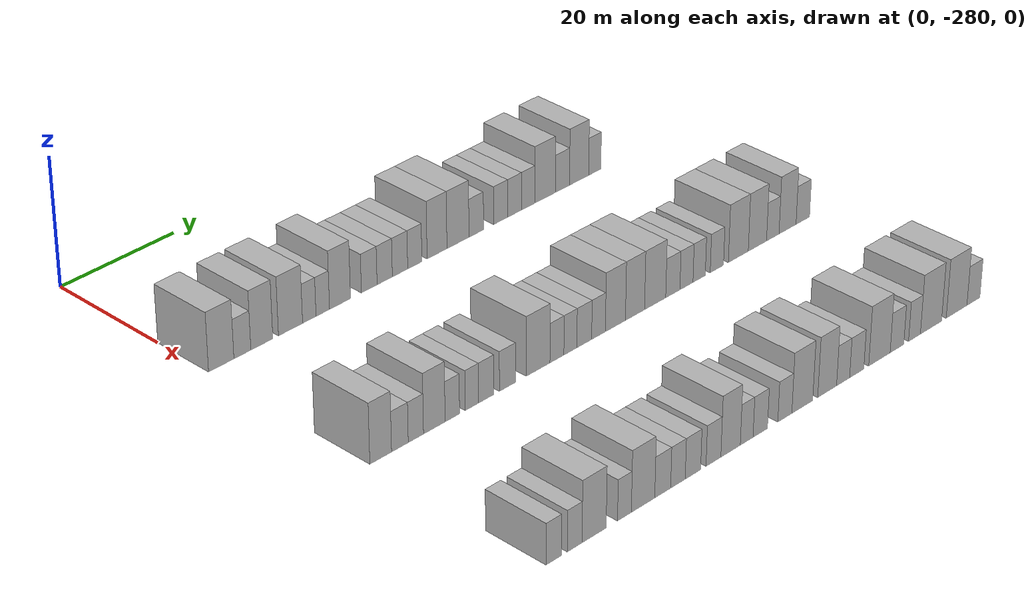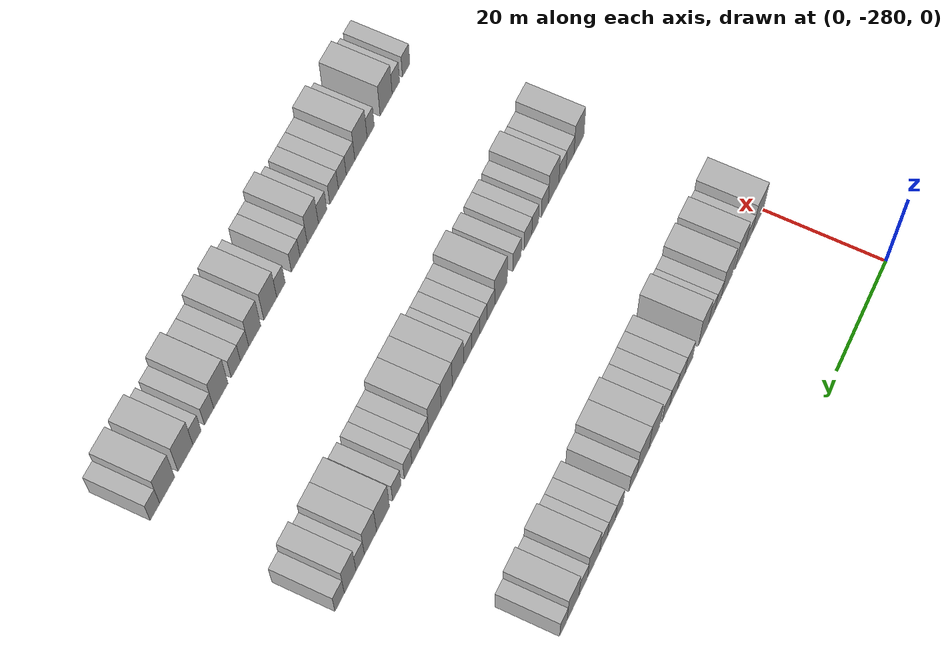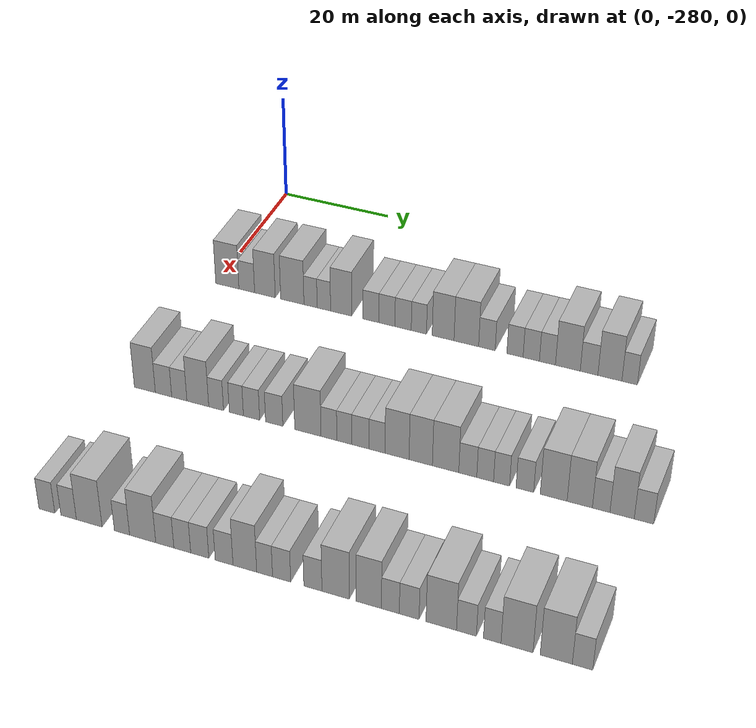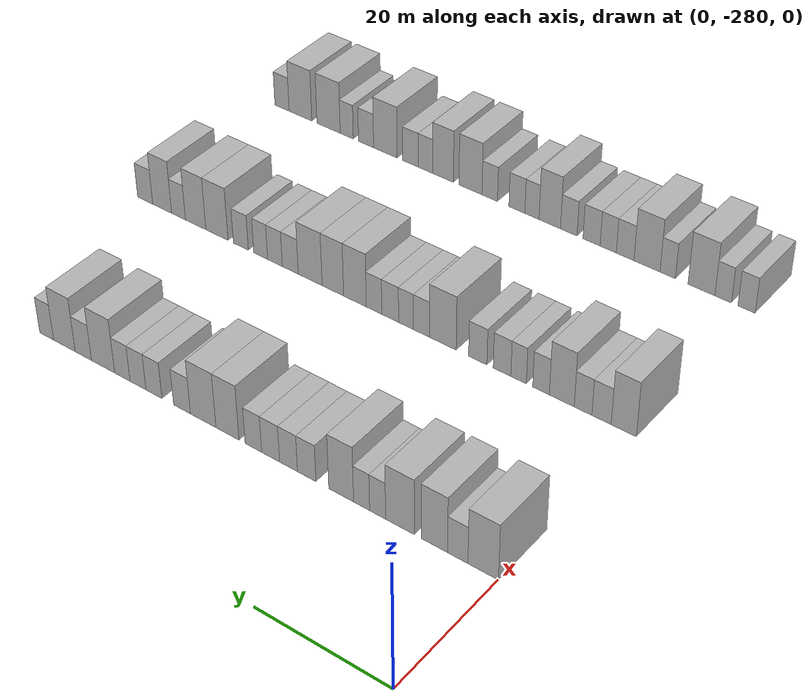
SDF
<sdf version="1.6">
 <world name="default">
  <model name="building_1">
   <static>1</static>
   <pose>25.0000 -277.8260 0 0.000000 0.000000 0.000000</pose>
   <link name="link">
    <pose>0 0 4.50 0 0 0</pose>
    <collision name="collision"><geometry><box><size>10.0000 4.3480 9.0000</size></box></geometry></collision>
    <visual name="visual">
     <cast_shadows>0</cast_shadows>
     <geometry><box><size>10.0000 4.3480 9.0000</size></box></geometry>
     <material>
      <script>
       <uri>model://HANNAS_wall/materials/scripts</uri>
       <uri>model://HANNAS_wall/materials/textures</uri>
       <name>vrc/HANNAS_wall</name>
      </script>
     </material>
    </visual>
   </link>
  </model>
  <model name="building_2">
   <static>1</static>
   <pose>25.0000 -274.1869 0 0.000000 0.000000 0.000000</pose>
   <link name="link">
    <pose>0 0 3.00 0 0 0</pose>
    <collision name="collision"><geometry><box><size>10.0000 2.9302 6.0000</size></box></geometry></collision>
    <visual name="visual">
     <cast_shadows>0</cast_shadows>
     <geometry><box><size>10.0000 2.9302 6.0000</size></box></geometry>
     <material>
      <script>
       <uri>model://HANNAS_wall/materials/scripts</uri>
       <uri>model://HANNAS_wall/materials/textures</uri>
       <name>vrc/HANNAS_wall</name>
      </script>
     </material>
    </visual>
   </link>
  </model>
  <model name="building_3">
   <static>1</static>
   <pose>25.0000 -270.8014 0 0.000000 0.000000 0.000000</pose>
   <link name="link">
    <pose>0 0 4.50 0 0 0</pose>
    <collision name="collision"><geometry><box><size>10.0000 3.8408 9.0000</size></box></geometry></collision>
    <visual name="visual">
     <cast_shadows>0</cast_shadows>
     <geometry><box><size>10.0000 3.8408 9.0000</size></box></geometry>
     <material>
      <script>
       <uri>model://HANNAS_wall/materials/scripts</uri>
       <uri>model://HANNAS_wall/materials/textures</uri>
       <name>vrc/HANNAS_wall</name>
      </script>
     </material>
    </visual>
   </link>
  </model>
  <model name="building_4">
   <static>1</static>
   <pose>25.0000 -265.7415 0 0.000000 0.000000 0.000000</pose>
   <link name="link">
    <pose>0 0 4.50 0 0 0</pose>
    <collision name="collision"><geometry><box><size>10.0000 4.2791 9.0000</size></box></geometry></collision>
    <visual name="visual">
     <cast_shadows>0</cast_shadows>
     <geometry><box><size>10.0000 4.2791 9.0000</size></box></geometry>
     <material>
      <script>
       <uri>model://HANNAS_wall/materials/scripts</uri>
       <uri>model://HANNAS_wall/materials/textures</uri>
       <name>vrc/HANNAS_wall</name>
      </script>
     </material>
    </visual>
   </link>
  </model>
  <model name="building_5">
   <static>1</static>
   <pose>25.0000 -262.3979 0 0.000000 0.000000 0.000000</pose>
   <link name="link">
    <pose>0 0 3.00 0 0 0</pose>
    <collision name="collision"><geometry><box><size>10.0000 2.4080 6.0000</size></box></geometry></collision>
    <visual name="visual">
     <cast_shadows>0</cast_shadows>
     <geometry><box><size>10.0000 2.4080 6.0000</size></box></geometry>
     <material>
      <script>
       <uri>model://HANNAS_wall/materials/scripts</uri>
       <uri>model://HANNAS_wall/materials/textures</uri>
       <name>vrc/HANNAS_wall</name>
      </script>
     </material>
    </visual>
   </link>
  </model>
  <model name="building_6">
   <static>1</static>
   <pose>25.0000 -259.9732 0 0.000000 0.000000 0.000000</pose>
   <link name="link">
    <pose>0 0 3.00 0 0 0</pose>
    <collision name="collision"><geometry><box><size>10.0000 2.4414 6.0000</size></box></geometry></collision>
    <visual name="visual">
     <cast_shadows>0</cast_shadows>
     <geometry><box><size>10.0000 2.4414 6.0000</size></box></geometry>
     <material>
      <script>
       <uri>model://HANNAS_wall/materials/scripts</uri>
       <uri>model://HANNAS_wall/materials/textures</uri>
       <name>vrc/HANNAS_wall</name>
      </script>
     </material>
    </visual>
   </link>
  </model>
  <model name="building_7">
   <static>1</static>
   <pose>25.0000 -256.8444 0 0.000000 0.000000 0.000000</pose>
   <link name="link">
    <pose>0 0 4.50 0 0 0</pose>
    <collision name="collision"><geometry><box><size>10.0000 3.8161 9.0000</size></box></geometry></collision>
    <visual name="visual">
     <cast_shadows>0</cast_shadows>
     <geometry><box><size>10.0000 3.8161 9.0000</size></box></geometry>
     <material>
      <script>
       <uri>model://HANNAS_wall/materials/scripts</uri>
       <uri>model://HANNAS_wall/materials/textures</uri>
       <name>vrc/HANNAS_wall</name>
      </script>
     </material>
    </visual>
   </link>
  </model>
  <model name="building_8">
   <static>1</static>
   <pose>25.0000 -251.4877 0 0.000000 0.000000 0.000000</pose>
   <link name="link">
    <pose>0 0 3.00 0 0 0</pose>
    <collision name="collision"><geometry><box><size>10.0000 2.8972 6.0000</size></box></geometry></collision>
    <visual name="visual">
     <cast_shadows>0</cast_shadows>
     <geometry><box><size>10.0000 2.8972 6.0000</size></box></geometry>
     <material>
      <script>
       <uri>model://HANNAS_wall/materials/scripts</uri>
       <uri>model://HANNAS_wall/materials/textures</uri>
       <name>vrc/HANNAS_wall</name>
      </script>
     </material>
    </visual>
   </link>
  </model>
  <model name="building_9">
   <static>1</static>
   <pose>25.0000 -248.6193 0 0.000000 0.000000 0.000000</pose>
   <link name="link">
    <pose>0 0 3.00 0 0 0</pose>
    <collision name="collision"><geometry><box><size>10.0000 2.8397 6.0000</size></box></geometry></collision>
    <visual name="visual">
     <cast_shadows>0</cast_shadows>
     <geometry><box><size>10.0000 2.8397 6.0000</size></box></geometry>
     <material>
      <script>
       <uri>model://HANNAS_wall/materials/scripts</uri>
       <uri>model://HANNAS_wall/materials/textures</uri>
       <name>vrc/HANNAS_wall</name>
      </script>
     </material>
    </visual>
   </link>
  </model>
  <model name="building_10">
   <static>1</static>
   <pose>25.0000 -245.7601 0 0.000000 0.000000 0.000000</pose>
   <link name="link">
    <pose>0 0 3.00 0 0 0</pose>
    <collision name="collision"><geometry><box><size>10.0000 2.8786 6.0000</size></box></geometry></collision>
    <visual name="visual">
     <cast_shadows>0</cast_shadows>
     <geometry><box><size>10.0000 2.8786 6.0000</size></box></geometry>
     <material>
      <script>
       <uri>model://HANNAS_wall/materials/scripts</uri>
       <uri>model://HANNAS_wall/materials/textures</uri>
       <name>vrc/HANNAS_wall</name>
      </script>
     </material>
    </visual>
   </link>
  </model>
  <model name="building_11">
   <static>1</static>
   <pose>25.0000 -242.9808 0 0.000000 0.000000 0.000000</pose>
   <link name="link">
    <pose>0 0 3.00 0 0 0</pose>
    <collision name="collision"><geometry><box><size>10.0000 2.6799 6.0000</size></box></geometry></collision>
    <visual name="visual">
     <cast_shadows>0</cast_shadows>
     <geometry><box><size>10.0000 2.6799 6.0000</size></box></geometry>
     <material>
      <script>
       <uri>model://HANNAS_wall/materials/scripts</uri>
       <uri>model://HANNAS_wall/materials/textures</uri>
       <name>vrc/HANNAS_wall</name>
      </script>
     </material>
    </visual>
   </link>
  </model>
  <model name="building_12">
   <static>1</static>
   <pose>25.0000 -238.7418 0 0.000000 0.000000 0.000000</pose>
   <link name="link">
    <pose>0 0 4.50 0 0 0</pose>
    <collision name="collision"><geometry><box><size>10.0000 3.7983 9.0000</size></box></geometry></collision>
    <visual name="visual">
     <cast_shadows>0</cast_shadows>
     <geometry><box><size>10.0000 3.7983 9.0000</size></box></geometry>
     <material>
      <script>
       <uri>model://HANNAS_wall/materials/scripts</uri>
       <uri>model://HANNAS_wall/materials/textures</uri>
       <name>vrc/HANNAS_wall</name>
      </script>
     </material>
    </visual>
   </link>
  </model>
  <model name="building_13">
   <static>1</static>
   <pose>25.0000 -234.7116 0 0.000000 0.000000 0.000000</pose>
   <link name="link">
    <pose>0 0 4.50 0 0 0</pose>
    <collision name="collision"><geometry><box><size>10.0000 4.2622 9.0000</size></box></geometry></collision>
    <visual name="visual">
     <cast_shadows>0</cast_shadows>
     <geometry><box><size>10.0000 4.2622 9.0000</size></box></geometry>
     <material>
      <script>
       <uri>model://HANNAS_wall/materials/scripts</uri>
       <uri>model://HANNAS_wall/materials/textures</uri>
       <name>vrc/HANNAS_wall</name>
      </script>
     </material>
    </visual>
   </link>
  </model>
  <model name="building_14">
   <static>1</static>
   <pose>25.0000 -231.1592 0 0.000000 0.000000 0.000000</pose>
   <link name="link">
    <pose>0 0 3.00 0 0 0</pose>
    <collision name="collision"><geometry><box><size>10.0000 2.8426 6.0000</size></box></geometry></collision>
    <visual name="visual">
     <cast_shadows>0</cast_shadows>
     <geometry><box><size>10.0000 2.8426 6.0000</size></box></geometry>
     <material>
      <script>
       <uri>model://HANNAS_wall/materials/scripts</uri>
       <uri>model://HANNAS_wall/materials/textures</uri>
       <name>vrc/HANNAS_wall</name>
      </script>
     </material>
    </visual>
   </link>
  </model>
  <model name="building_15">
   <static>1</static>
   <pose>25.0000 -226.3628 0 0.000000 0.000000 0.000000</pose>
   <link name="link">
    <pose>0 0 3.00 0 0 0</pose>
    <collision name="collision"><geometry><box><size>10.0000 2.7502 6.0000</size></box></geometry></collision>
    <visual name="visual">
     <cast_shadows>0</cast_shadows>
     <geometry><box><size>10.0000 2.7502 6.0000</size></box></geometry>
     <material>
      <script>
       <uri>model://HANNAS_wall/materials/scripts</uri>
       <uri>model://HANNAS_wall/materials/textures</uri>
       <name>vrc/HANNAS_wall</name>
      </script>
     </material>
    </visual>
   </link>
  </model>
  <model name="building_16">
   <static>1</static>
   <pose>25.0000 -223.6065 0 0.000000 0.000000 0.000000</pose>
   <link name="link">
    <pose>0 0 3.00 0 0 0</pose>
    <collision name="collision"><geometry><box><size>10.0000 2.7623 6.0000</size></box></geometry></collision>
    <visual name="visual">
     <cast_shadows>0</cast_shadows>
     <geometry><box><size>10.0000 2.7623 6.0000</size></box></geometry>
     <material>
      <script>
       <uri>model://HANNAS_wall/materials/scripts</uri>
       <uri>model://HANNAS_wall/materials/textures</uri>
       <name>vrc/HANNAS_wall</name>
      </script>
     </material>
    </visual>
   </link>
  </model>
  <model name="building_17">
   <static>1</static>
   <pose>25.0000 -220.8768 0 0.000000 0.000000 0.000000</pose>
   <link name="link">
    <pose>0 0 3.00 0 0 0</pose>
    <collision name="collision"><geometry><box><size>10.0000 2.6971 6.0000</size></box></geometry></collision>
    <visual name="visual">
     <cast_shadows>0</cast_shadows>
     <geometry><box><size>10.0000 2.6971 6.0000</size></box></geometry>
     <material>
      <script>
       <uri>model://HANNAS_wall/materials/scripts</uri>
       <uri>model://HANNAS_wall/materials/textures</uri>
       <name>vrc/HANNAS_wall</name>
      </script>
     </material>
    </visual>
   </link>
  </model>
  <model name="building_18">
   <static>1</static>
   <pose>25.0000 -217.4593 0 0.000000 0.000000 0.000000</pose>
   <link name="link">
    <pose>0 0 4.50 0 0 0</pose>
    <collision name="collision"><geometry><box><size>10.0000 4.1379 9.0000</size></box></geometry></collision>
    <visual name="visual">
     <cast_shadows>0</cast_shadows>
     <geometry><box><size>10.0000 4.1379 9.0000</size></box></geometry>
     <material>
      <script>
       <uri>model://HANNAS_wall/materials/scripts</uri>
       <uri>model://HANNAS_wall/materials/textures</uri>
       <name>vrc/HANNAS_wall</name>
      </script>
     </material>
    </visual>
   </link>
  </model>
  <model name="building_19">
   <static>1</static>
   <pose>25.0000 -213.9292 0 0.000000 0.000000 0.000000</pose>
   <link name="link">
    <pose>0 0 3.00 0 0 0</pose>
    <collision name="collision"><geometry><box><size>10.0000 2.9224 6.0000</size></box></geometry></collision>
    <visual name="visual">
     <cast_shadows>0</cast_shadows>
     <geometry><box><size>10.0000 2.9224 6.0000</size></box></geometry>
     <material>
      <script>
       <uri>model://HANNAS_wall/materials/scripts</uri>
       <uri>model://HANNAS_wall/materials/textures</uri>
       <name>vrc/HANNAS_wall</name>
      </script>
     </material>
    </visual>
   </link>
  </model>
  <model name="building_20">
   <static>1</static>
   <pose>25.0000 -210.4902 0 0.000000 0.000000 0.000000</pose>
   <link name="link">
    <pose>0 0 4.50 0 0 0</pose>
    <collision name="collision"><geometry><box><size>10.0000 3.9556 9.0000</size></box></geometry></collision>
    <visual name="visual">
     <cast_shadows>0</cast_shadows>
     <geometry><box><size>10.0000 3.9556 9.0000</size></box></geometry>
     <material>
      <script>
       <uri>model://HANNAS_wall/materials/scripts</uri>
       <uri>model://HANNAS_wall/materials/textures</uri>
       <name>vrc/HANNAS_wall</name>
      </script>
     </material>
    </visual>
   </link>
  </model>
  <model name="building_21">
   <static>1</static>
   <pose>25.0000 -207.2453 0 0.000000 0.000000 0.000000</pose>
   <link name="link">
    <pose>0 0 3.00 0 0 0</pose>
    <collision name="collision"><geometry><box><size>10.0000 2.5341 6.0000</size></box></geometry></collision>
    <visual name="visual">
     <cast_shadows>0</cast_shadows>
     <geometry><box><size>10.0000 2.5341 6.0000</size></box></geometry>
     <material>
      <script>
       <uri>model://HANNAS_wall/materials/scripts</uri>
       <uri>model://HANNAS_wall/materials/textures</uri>
       <name>vrc/HANNAS_wall</name>
      </script>
     </material>
    </visual>
   </link>
  </model>
  <model name="building_140">
   <static>1</static>
   <pose>55.0000 -278.1449 0 0.000000 0.000000 0.000000</pose>
   <link name="link">
    <pose>0 0 4.50 0 0 0</pose>
    <collision name="collision"><geometry><box><size>10.0000 3.7102 9.0000</size></box></geometry></collision>
    <visual name="visual">
     <cast_shadows>0</cast_shadows>
     <geometry><box><size>10.0000 3.7102 9.0000</size></box></geometry>
     <material>
      <script>
       <uri>model://HANNAS_wall/materials/scripts</uri>
       <uri>model://HANNAS_wall/materials/textures</uri>
       <name>vrc/HANNAS_wall</name>
      </script>
     </material>
    </visual>
   </link>
  </model>
  <model name="building_141">
   <static>1</static>
   <pose>55.0000 -274.8496 0 0.000000 0.000000 0.000000</pose>
   <link name="link">
    <pose>0 0 3.00 0 0 0</pose>
    <collision name="collision"><geometry><box><size>10.0000 2.8804 6.0000</size></box></geometry></collision>
    <visual name="visual">
     <cast_shadows>0</cast_shadows>
     <geometry><box><size>10.0000 2.8804 6.0000</size></box></geometry>
     <material>
      <script>
       <uri>model://HANNAS_wall/materials/scripts</uri>
       <uri>model://HANNAS_wall/materials/textures</uri>
       <name>vrc/HANNAS_wall</name>
      </script>
     </material>
    </visual>
   </link>
  </model>
  <model name="building_142">
   <static>1</static>
   <pose>55.0000 -272.0814 0 0.000000 0.000000 0.000000</pose>
   <link name="link">
    <pose>0 0 3.00 0 0 0</pose>
    <collision name="collision"><geometry><box><size>10.0000 2.6559 6.0000</size></box></geometry></collision>
    <visual name="visual">
     <cast_shadows>0</cast_shadows>
     <geometry><box><size>10.0000 2.6559 6.0000</size></box></geometry>
     <material>
      <script>
       <uri>model://HANNAS_wall/materials/scripts</uri>
       <uri>model://HANNAS_wall/materials/textures</uri>
       <name>vrc/HANNAS_wall</name>
      </script>
     </material>
    </visual>
   </link>
  </model>
  <model name="building_143">
   <static>1</static>
   <pose>55.0000 -268.8556 0 0.000000 0.000000 0.000000</pose>
   <link name="link">
    <pose>0 0 4.50 0 0 0</pose>
    <collision name="collision"><geometry><box><size>10.0000 3.7958 9.0000</size></box></geometry></collision>
    <visual name="visual">
     <cast_shadows>0</cast_shadows>
     <geometry><box><size>10.0000 3.7958 9.0000</size></box></geometry>
     <material>
      <script>
       <uri>model://HANNAS_wall/materials/scripts</uri>
       <uri>model://HANNAS_wall/materials/textures</uri>
       <name>vrc/HANNAS_wall</name>
      </script>
     </material>
    </visual>
   </link>
  </model>
  <model name="building_144">
   <static>1</static>
   <pose>55.0000 -265.6779 0 0.000000 0.000000 0.000000</pose>
   <link name="link">
    <pose>0 0 3.00 0 0 0</pose>
    <collision name="collision"><geometry><box><size>10.0000 2.5595 6.0000</size></box></geometry></collision>
    <visual name="visual">
     <cast_shadows>0</cast_shadows>
     <geometry><box><size>10.0000 2.5595 6.0000</size></box></geometry>
     <material>
      <script>
       <uri>model://HANNAS_wall/materials/scripts</uri>
       <uri>model://HANNAS_wall/materials/textures</uri>
       <name>vrc/HANNAS_wall</name>
      </script>
     </material>
    </visual>
   </link>
  </model>
  <model name="building_145">
   <static>1</static>
   <pose>55.0000 -262.1956 0 0.000000 0.000000 0.000000</pose>
   <link name="link">
    <pose>0 0 3.00 0 0 0</pose>
    <collision name="collision"><geometry><box><size>10.0000 2.4051 6.0000</size></box></geometry></collision>
    <visual name="visual">
     <cast_shadows>0</cast_shadows>
     <geometry><box><size>10.0000 2.4051 6.0000</size></box></geometry>
     <material>
      <script>
       <uri>model://HANNAS_wall/materials/scripts</uri>
       <uri>model://HANNAS_wall/materials/textures</uri>
       <name>vrc/HANNAS_wall</name>
      </script>
     </material>
    </visual>
   </link>
  </model>
  <model name="building_146">
   <static>1</static>
   <pose>55.0000 -259.6068 0 0.000000 0.000000 0.000000</pose>
   <link name="link">
    <pose>0 0 3.00 0 0 0</pose>
    <collision name="collision"><geometry><box><size>10.0000 2.7726 6.0000</size></box></geometry></collision>
    <visual name="visual">
     <cast_shadows>0</cast_shadows>
     <geometry><box><size>10.0000 2.7726 6.0000</size></box></geometry>
     <material>
      <script>
       <uri>model://HANNAS_wall/materials/scripts</uri>
       <uri>model://HANNAS_wall/materials/textures</uri>
       <name>vrc/HANNAS_wall</name>
      </script>
     </material>
    </visual>
   </link>
  </model>
  <model name="building_147">
   <static>1</static>
   <pose>55.0000 -255.7576 0 0.000000 0.000000 0.000000</pose>
   <link name="link">
    <pose>0 0 3.00 0 0 0</pose>
    <collision name="collision"><geometry><box><size>10.0000 2.9258 6.0000</size></box></geometry></collision>
    <visual name="visual">
     <cast_shadows>0</cast_shadows>
     <geometry><box><size>10.0000 2.9258 6.0000</size></box></geometry>
     <material>
      <script>
       <uri>model://HANNAS_wall/materials/scripts</uri>
       <uri>model://HANNAS_wall/materials/textures</uri>
       <name>vrc/HANNAS_wall</name>
      </script>
     </material>
    </visual>
   </link>
  </model>
  <model name="building_148">
   <static>1</static>
   <pose>55.0000 -250.1007 0 0.000000 0.000000 0.000000</pose>
   <link name="link">
    <pose>0 0 4.50 0 0 0</pose>
    <collision name="collision"><geometry><box><size>10.0000 4.3880 9.0000</size></box></geometry></collision>
    <visual name="visual">
     <cast_shadows>0</cast_shadows>
     <geometry><box><size>10.0000 4.3880 9.0000</size></box></geometry>
     <material>
      <script>
       <uri>model://HANNAS_wall/materials/scripts</uri>
       <uri>model://HANNAS_wall/materials/textures</uri>
       <name>vrc/HANNAS_wall</name>
      </script>
     </material>
    </visual>
   </link>
  </model>
  <model name="building_149">
   <static>1</static>
   <pose>55.0000 -246.5993 0 0.000000 0.000000 0.000000</pose>
   <link name="link">
    <pose>0 0 3.00 0 0 0</pose>
    <collision name="collision"><geometry><box><size>10.0000 2.6149 6.0000</size></box></geometry></collision>
    <visual name="visual">
     <cast_shadows>0</cast_shadows>
     <geometry><box><size>10.0000 2.6149 6.0000</size></box></geometry>
     <material>
      <script>
       <uri>model://HANNAS_wall/materials/scripts</uri>
       <uri>model://HANNAS_wall/materials/textures</uri>
       <name>vrc/HANNAS_wall</name>
      </script>
     </material>
    </visual>
   </link>
  </model>
  <model name="building_150">
   <static>1</static>
   <pose>55.0000 -244.0623 0 0.000000 0.000000 0.000000</pose>
   <link name="link">
    <pose>0 0 3.00 0 0 0</pose>
    <collision name="collision"><geometry><box><size>10.0000 2.4591 6.0000</size></box></geometry></collision>
    <visual name="visual">
     <cast_shadows>0</cast_shadows>
     <geometry><box><size>10.0000 2.4591 6.0000</size></box></geometry>
     <material>
      <script>
       <uri>model://HANNAS_wall/materials/scripts</uri>
       <uri>model://HANNAS_wall/materials/textures</uri>
       <name>vrc/HANNAS_wall</name>
      </script>
     </material>
    </visual>
   </link>
  </model>
  <model name="building_151">
   <static>1</static>
   <pose>55.0000 -241.4262 0 0.000000 0.000000 0.000000</pose>
   <link name="link">
    <pose>0 0 3.00 0 0 0</pose>
    <collision name="collision"><geometry><box><size>10.0000 2.8131 6.0000</size></box></geometry></collision>
    <visual name="visual">
     <cast_shadows>0</cast_shadows>
     <geometry><box><size>10.0000 2.8131 6.0000</size></box></geometry>
     <material>
      <script>
       <uri>model://HANNAS_wall/materials/scripts</uri>
       <uri>model://HANNAS_wall/materials/textures</uri>
       <name>vrc/HANNAS_wall</name>
      </script>
     </material>
    </visual>
   </link>
  </model>
  <model name="building_152">
   <static>1</static>
   <pose>55.0000 -238.7062 0 0.000000 0.000000 0.000000</pose>
   <link name="link">
    <pose>0 0 3.00 0 0 0</pose>
    <collision name="collision"><geometry><box><size>10.0000 2.6269 6.0000</size></box></geometry></collision>
    <visual name="visual">
     <cast_shadows>0</cast_shadows>
     <geometry><box><size>10.0000 2.6269 6.0000</size></box></geometry>
     <material>
      <script>
       <uri>model://HANNAS_wall/materials/scripts</uri>
       <uri>model://HANNAS_wall/materials/textures</uri>
       <name>vrc/HANNAS_wall</name>
      </script>
     </material>
    </visual>
   </link>
  </model>
  <model name="building_153">
   <static>1</static>
   <pose>55.0000 -235.4484 0 0.000000 0.000000 0.000000</pose>
   <link name="link">
    <pose>0 0 4.50 0 0 0</pose>
    <collision name="collision"><geometry><box><size>10.0000 3.8888 9.0000</size></box></geometry></collision>
    <visual name="visual">
     <cast_shadows>0</cast_shadows>
     <geometry><box><size>10.0000 3.8888 9.0000</size></box></geometry>
     <material>
      <script>
       <uri>model://HANNAS_wall/materials/scripts</uri>
       <uri>model://HANNAS_wall/materials/textures</uri>
       <name>vrc/HANNAS_wall</name>
      </script>
     </material>
    </visual>
   </link>
  </model>
  <model name="building_154">
   <static>1</static>
   <pose>55.0000 -231.6348 0 0.000000 0.000000 0.000000</pose>
   <link name="link">
    <pose>0 0 4.50 0 0 0</pose>
    <collision name="collision"><geometry><box><size>10.0000 3.7383 9.0000</size></box></geometry></collision>
    <visual name="visual">
     <cast_shadows>0</cast_shadows>
     <geometry><box><size>10.0000 3.7383 9.0000</size></box></geometry>
     <material>
      <script>
       <uri>model://HANNAS_wall/materials/scripts</uri>
       <uri>model://HANNAS_wall/materials/textures</uri>
       <name>vrc/HANNAS_wall</name>
      </script>
     </material>
    </visual>
   </link>
  </model>
  <model name="building_155">
   <static>1</static>
   <pose>55.0000 -227.6685 0 0.000000 0.000000 0.000000</pose>
   <link name="link">
    <pose>0 0 4.50 0 0 0</pose>
    <collision name="collision"><geometry><box><size>10.0000 4.1943 9.0000</size></box></geometry></collision>
    <visual name="visual">
     <cast_shadows>0</cast_shadows>
     <geometry><box><size>10.0000 4.1943 9.0000</size></box></geometry>
     <material>
      <script>
       <uri>model://HANNAS_wall/materials/scripts</uri>
       <uri>model://HANNAS_wall/materials/textures</uri>
       <name>vrc/HANNAS_wall</name>
      </script>
     </material>
    </visual>
   </link>
  </model>
  <model name="building_156">
   <static>1</static>
   <pose>55.0000 -224.1507 0 0.000000 0.000000 0.000000</pose>
   <link name="link">
    <pose>0 0 3.00 0 0 0</pose>
    <collision name="collision"><geometry><box><size>10.0000 2.8413 6.0000</size></box></geometry></collision>
    <visual name="visual">
     <cast_shadows>0</cast_shadows>
     <geometry><box><size>10.0000 2.8413 6.0000</size></box></geometry>
     <material>
      <script>
       <uri>model://HANNAS_wall/materials/scripts</uri>
       <uri>model://HANNAS_wall/materials/textures</uri>
       <name>vrc/HANNAS_wall</name>
      </script>
     </material>
    </visual>
   </link>
  </model>
  <model name="building_157">
   <static>1</static>
   <pose>55.0000 -221.4135 0 0.000000 0.000000 0.000000</pose>
   <link name="link">
    <pose>0 0 3.00 0 0 0</pose>
    <collision name="collision"><geometry><box><size>10.0000 2.6331 6.0000</size></box></geometry></collision>
    <visual name="visual">
     <cast_shadows>0</cast_shadows>
     <geometry><box><size>10.0000 2.6331 6.0000</size></box></geometry>
     <material>
      <script>
       <uri>model://HANNAS_wall/materials/scripts</uri>
       <uri>model://HANNAS_wall/materials/textures</uri>
       <name>vrc/HANNAS_wall</name>
      </script>
     </material>
    </visual>
   </link>
  </model>
  <model name="building_158">
   <static>1</static>
   <pose>55.0000 -218.8464 0 0.000000 0.000000 0.000000</pose>
   <link name="link">
    <pose>0 0 3.00 0 0 0</pose>
    <collision name="collision"><geometry><box><size>10.0000 2.5011 6.0000</size></box></geometry></collision>
    <visual name="visual">
     <cast_shadows>0</cast_shadows>
     <geometry><box><size>10.0000 2.5011 6.0000</size></box></geometry>
     <material>
      <script>
       <uri>model://HANNAS_wall/materials/scripts</uri>
       <uri>model://HANNAS_wall/materials/textures</uri>
       <name>vrc/HANNAS_wall</name>
      </script>
     </material>
    </visual>
   </link>
  </model>
  <model name="building_159">
   <static>1</static>
   <pose>55.0000 -215.2311 0 0.000000 0.000000 0.000000</pose>
   <link name="link">
    <pose>0 0 3.00 0 0 0</pose>
    <collision name="collision"><geometry><box><size>10.0000 2.7294 6.0000</size></box></geometry></collision>
    <visual name="visual">
     <cast_shadows>0</cast_shadows>
     <geometry><box><size>10.0000 2.7294 6.0000</size></box></geometry>
     <material>
      <script>
       <uri>model://HANNAS_wall/materials/scripts</uri>
       <uri>model://HANNAS_wall/materials/textures</uri>
       <name>vrc/HANNAS_wall</name>
      </script>
     </material>
    </visual>
   </link>
  </model>
  <model name="building_160">
   <static>1</static>
   <pose>55.0000 -210.8026 0 0.000000 0.000000 0.000000</pose>
   <link name="link">
    <pose>0 0 4.50 0 0 0</pose>
    <collision name="collision"><geometry><box><size>10.0000 4.1276 9.0000</size></box></geometry></collision>
    <visual name="visual">
     <cast_shadows>0</cast_shadows>
     <geometry><box><size>10.0000 4.1276 9.0000</size></box></geometry>
     <material>
      <script>
       <uri>model://HANNAS_wall/materials/scripts</uri>
       <uri>model://HANNAS_wall/materials/textures</uri>
       <name>vrc/HANNAS_wall</name>
      </script>
     </material>
    </visual>
   </link>
  </model>
  <model name="building_161">
   <static>1</static>
   <pose>55.0000 -206.8204 0 0.000000 0.000000 0.000000</pose>
   <link name="link">
    <pose>0 0 4.50 0 0 0</pose>
    <collision name="collision"><geometry><box><size>10.0000 3.8368 9.0000</size></box></geometry></collision>
    <visual name="visual">
     <cast_shadows>0</cast_shadows>
     <geometry><box><size>10.0000 3.8368 9.0000</size></box></geometry>
     <material>
      <script>
       <uri>model://HANNAS_wall/materials/scripts</uri>
       <uri>model://HANNAS_wall/materials/textures</uri>
       <name>vrc/HANNAS_wall</name>
      </script>
     </material>
    </visual>
   </link>
  </model>
  <model name="building_162">
   <static>1</static>
   <pose>55.0000 -203.5820 0 0.000000 0.000000 0.000000</pose>
   <link name="link">
    <pose>0 0 3.00 0 0 0</pose>
    <collision name="collision"><geometry><box><size>10.0000 2.6400 6.0000</size></box></geometry></collision>
    <visual name="visual">
     <cast_shadows>0</cast_shadows>
     <geometry><box><size>10.0000 2.6400 6.0000</size></box></geometry>
     <material>
      <script>
       <uri>model://HANNAS_wall/materials/scripts</uri>
       <uri>model://HANNAS_wall/materials/textures</uri>
       <name>vrc/HANNAS_wall</name>
      </script>
     </material>
    </visual>
   </link>
  </model>
  <model name="building_163">
   <static>1</static>
   <pose>55.0000 -200.4449 0 0.000000 0.000000 0.000000</pose>
   <link name="link">
    <pose>0 0 4.50 0 0 0</pose>
    <collision name="collision"><geometry><box><size>10.0000 3.6341 9.0000</size></box></geometry></collision>
    <visual name="visual">
     <cast_shadows>0</cast_shadows>
     <geometry><box><size>10.0000 3.6341 9.0000</size></box></geometry>
     <material>
      <script>
       <uri>model://HANNAS_wall/materials/scripts</uri>
       <uri>model://HANNAS_wall/materials/textures</uri>
       <name>vrc/HANNAS_wall</name>
      </script>
     </material>
    </visual>
   </link>
  </model>
  <model name="building_164">
   <static>1</static>
   <pose>55.0000 -197.1784 0 0.000000 0.000000 0.000000</pose>
   <link name="link">
    <pose>0 0 3.00 0 0 0</pose>
    <collision name="collision"><geometry><box><size>10.0000 2.8990 6.0000</size></box></geometry></collision>
    <visual name="visual">
     <cast_shadows>0</cast_shadows>
     <geometry><box><size>10.0000 2.8990 6.0000</size></box></geometry>
     <material>
      <script>
       <uri>model://HANNAS_wall/materials/scripts</uri>
       <uri>model://HANNAS_wall/materials/textures</uri>
       <name>vrc/HANNAS_wall</name>
      </script>
     </material>
    </visual>
   </link>
  </model>
  <model name="building_277">
   <static>1</static>
   <pose>85.0000 -278.6834 0 0.000000 0.000000 0.000000</pose>
   <link name="link">
    <pose>0 0 3.00 0 0 0</pose>
    <collision name="collision"><geometry><box><size>10.0000 2.6333 6.0000</size></box></geometry></collision>
    <visual name="visual">
     <cast_shadows>0</cast_shadows>
     <geometry><box><size>10.0000 2.6333 6.0000</size></box></geometry>
     <material>
      <script>
       <uri>model://HANNAS_wall/materials/scripts</uri>
       <uri>model://HANNAS_wall/materials/textures</uri>
       <name>vrc/HANNAS_wall</name>
      </script>
     </material>
    </visual>
   </link>
  </model>
  <model name="building_278">
   <static>1</static>
   <pose>85.0000 -275.0883 0 0.000000 0.000000 0.000000</pose>
   <link name="link">
    <pose>0 0 3.00 0 0 0</pose>
    <collision name="collision"><geometry><box><size>10.0000 2.5568 6.0000</size></box></geometry></collision>
    <visual name="visual">
     <cast_shadows>0</cast_shadows>
     <geometry><box><size>10.0000 2.5568 6.0000</size></box></geometry>
     <material>
      <script>
       <uri>model://HANNAS_wall/materials/scripts</uri>
       <uri>model://HANNAS_wall/materials/textures</uri>
       <name>vrc/HANNAS_wall</name>
      </script>
     </material>
    </visual>
   </link>
  </model>
  <model name="building_279">
   <static>1</static>
   <pose>85.0000 -271.7044 0 0.000000 0.000000 0.000000</pose>
   <link name="link">
    <pose>0 0 4.50 0 0 0</pose>
    <collision name="collision"><geometry><box><size>10.0000 4.2109 9.0000</size></box></geometry></collision>
    <visual name="visual">
     <cast_shadows>0</cast_shadows>
     <geometry><box><size>10.0000 4.2109 9.0000</size></box></geometry>
     <material>
      <script>
       <uri>model://HANNAS_wall/materials/scripts</uri>
       <uri>model://HANNAS_wall/materials/textures</uri>
       <name>vrc/HANNAS_wall</name>
      </script>
     </material>
    </visual>
   </link>
  </model>
  <model name="building_280">
   <static>1</static>
   <pose>85.0000 -266.3717 0 0.000000 0.000000 0.000000</pose>
   <link name="link">
    <pose>0 0 3.00 0 0 0</pose>
    <collision name="collision"><geometry><box><size>10.0000 2.4546 6.0000</size></box></geometry></collision>
    <visual name="visual">
     <cast_shadows>0</cast_shadows>
     <geometry><box><size>10.0000 2.4546 6.0000</size></box></geometry>
     <material>
      <script>
       <uri>model://HANNAS_wall/materials/scripts</uri>
       <uri>model://HANNAS_wall/materials/textures</uri>
       <name>vrc/HANNAS_wall</name>
      </script>
     </material>
    </visual>
   </link>
  </model>
  <model name="building_281">
   <static>1</static>
   <pose>85.0000 -263.0446 0 0.000000 0.000000 0.000000</pose>
   <link name="link">
    <pose>0 0 4.50 0 0 0</pose>
    <collision name="collision"><geometry><box><size>10.0000 4.1995 9.0000</size></box></geometry></collision>
    <visual name="visual">
     <cast_shadows>0</cast_shadows>
     <geometry><box><size>10.0000 4.1995 9.0000</size></box></geometry>
     <material>
      <script>
       <uri>model://HANNAS_wall/materials/scripts</uri>
       <uri>model://HANNAS_wall/materials/textures</uri>
       <name>vrc/HANNAS_wall</name>
      </script>
     </material>
    </visual>
   </link>
  </model>
  <model name="building_282">
   <static>1</static>
   <pose>85.0000 -259.5010 0 0.000000 0.000000 0.000000</pose>
   <link name="link">
    <pose>0 0 3.00 0 0 0</pose>
    <collision name="collision"><geometry><box><size>10.0000 2.8878 6.0000</size></box></geometry></collision>
    <visual name="visual">
     <cast_shadows>0</cast_shadows>
     <geometry><box><size>10.0000 2.8878 6.0000</size></box></geometry>
     <material>
      <script>
       <uri>model://HANNAS_wall/materials/scripts</uri>
       <uri>model://HANNAS_wall/materials/textures</uri>
       <name>vrc/HANNAS_wall</name>
      </script>
     </material>
    </visual>
   </link>
  </model>
  <model name="building_283">
   <static>1</static>
   <pose>85.0000 -256.7252 0 0.000000 0.000000 0.000000</pose>
   <link name="link">
    <pose>0 0 3.00 0 0 0</pose>
    <collision name="collision"><geometry><box><size>10.0000 2.6638 6.0000</size></box></geometry></collision>
    <visual name="visual">
     <cast_shadows>0</cast_shadows>
     <geometry><box><size>10.0000 2.6638 6.0000</size></box></geometry>
     <material>
      <script>
       <uri>model://HANNAS_wall/materials/scripts</uri>
       <uri>model://HANNAS_wall/materials/textures</uri>
       <name>vrc/HANNAS_wall</name>
      </script>
     </material>
    </visual>
   </link>
  </model>
  <model name="building_284">
   <static>1</static>
   <pose>85.0000 -253.9704 0 0.000000 0.000000 0.000000</pose>
   <link name="link">
    <pose>0 0 3.00 0 0 0</pose>
    <collision name="collision"><geometry><box><size>10.0000 2.8459 6.0000</size></box></geometry></collision>
    <visual name="visual">
     <cast_shadows>0</cast_shadows>
     <geometry><box><size>10.0000 2.8459 6.0000</size></box></geometry>
     <material>
      <script>
       <uri>model://HANNAS_wall/materials/scripts</uri>
       <uri>model://HANNAS_wall/materials/textures</uri>
       <name>vrc/HANNAS_wall</name>
      </script>
     </material>
    </visual>
   </link>
  </model>
  <model name="building_285">
   <static>1</static>
   <pose>85.0000 -250.1621 0 0.000000 0.000000 0.000000</pose>
   <link name="link">
    <pose>0 0 3.00 0 0 0</pose>
    <collision name="collision"><geometry><box><size>10.0000 2.7706 6.0000</size></box></geometry></collision>
    <visual name="visual">
     <cast_shadows>0</cast_shadows>
     <geometry><box><size>10.0000 2.7706 6.0000</size></box></geometry>
     <material>
      <script>
       <uri>model://HANNAS_wall/materials/scripts</uri>
       <uri>model://HANNAS_wall/materials/textures</uri>
       <name>vrc/HANNAS_wall</name>
      </script>
     </material>
    </visual>
   </link>
  </model>
  <model name="building_286">
   <static>1</static>
   <pose>85.0000 -246.9461 0 0.000000 0.000000 0.000000</pose>
   <link name="link">
    <pose>0 0 4.50 0 0 0</pose>
    <collision name="collision"><geometry><box><size>10.0000 3.6613 9.0000</size></box></geometry></collision>
    <visual name="visual">
     <cast_shadows>0</cast_shadows>
     <geometry><box><size>10.0000 3.6613 9.0000</size></box></geometry>
     <material>
      <script>
       <uri>model://HANNAS_wall/materials/scripts</uri>
       <uri>model://HANNAS_wall/materials/textures</uri>
       <name>vrc/HANNAS_wall</name>
      </script>
     </material>
    </visual>
   </link>
  </model>
  <model name="building_287">
   <static>1</static>
   <pose>85.0000 -243.9014 0 0.000000 0.000000 0.000000</pose>
   <link name="link">
    <pose>0 0 3.00 0 0 0</pose>
    <collision name="collision"><geometry><box><size>10.0000 2.4281 6.0000</size></box></geometry></collision>
    <visual name="visual">
     <cast_shadows>0</cast_shadows>
     <geometry><box><size>10.0000 2.4281 6.0000</size></box></geometry>
     <material>
      <script>
       <uri>model://HANNAS_wall/materials/scripts</uri>
       <uri>model://HANNAS_wall/materials/textures</uri>
       <name>vrc/HANNAS_wall</name>
      </script>
     </material>
    </visual>
   </link>
  </model>
  <model name="building_288">
   <static>1</static>
   <pose>85.0000 -241.3052 0 0.000000 0.000000 0.000000</pose>
   <link name="link">
    <pose>0 0 3.00 0 0 0</pose>
    <collision name="collision"><geometry><box><size>10.0000 2.7644 6.0000</size></box></geometry></collision>
    <visual name="visual">
     <cast_shadows>0</cast_shadows>
     <geometry><box><size>10.0000 2.7644 6.0000</size></box></geometry>
     <material>
      <script>
       <uri>model://HANNAS_wall/materials/scripts</uri>
       <uri>model://HANNAS_wall/materials/textures</uri>
       <name>vrc/HANNAS_wall</name>
      </script>
     </material>
    </visual>
   </link>
  </model>
  <model name="building_289">
   <static>1</static>
   <pose>85.0000 -236.5602 0 0.000000 0.000000 0.000000</pose>
   <link name="link">
    <pose>0 0 3.00 0 0 0</pose>
    <collision name="collision"><geometry><box><size>10.0000 2.7257 6.0000</size></box></geometry></collision>
    <visual name="visual">
     <cast_shadows>0</cast_shadows>
     <geometry><box><size>10.0000 2.7257 6.0000</size></box></geometry>
     <material>
      <script>
       <uri>model://HANNAS_wall/materials/scripts</uri>
       <uri>model://HANNAS_wall/materials/textures</uri>
       <name>vrc/HANNAS_wall</name>
      </script>
     </material>
    </visual>
   </link>
  </model>
  <model name="building_290">
   <static>1</static>
   <pose>85.0000 -233.1485 0 0.000000 0.000000 0.000000</pose>
   <link name="link">
    <pose>0 0 4.50 0 0 0</pose>
    <collision name="collision"><geometry><box><size>10.0000 4.0978 9.0000</size></box></geometry></collision>
    <visual name="visual">
     <cast_shadows>0</cast_shadows>
     <geometry><box><size>10.0000 4.0978 9.0000</size></box></geometry>
     <material>
      <script>
       <uri>model://HANNAS_wall/materials/scripts</uri>
       <uri>model://HANNAS_wall/materials/textures</uri>
       <name>vrc/HANNAS_wall</name>
      </script>
     </material>
    </visual>
   </link>
  </model>
  <model name="building_291">
   <static>1</static>
   <pose>85.0000 -228.2250 0 0.000000 0.000000 0.000000</pose>
   <link name="link">
    <pose>0 0 4.50 0 0 0</pose>
    <collision name="collision"><geometry><box><size>10.0000 3.7492 9.0000</size></box></geometry></collision>
    <visual name="visual">
     <cast_shadows>0</cast_shadows>
     <geometry><box><size>10.0000 3.7492 9.0000</size></box></geometry>
     <material>
      <script>
       <uri>model://HANNAS_wall/materials/scripts</uri>
       <uri>model://HANNAS_wall/materials/textures</uri>
       <name>vrc/HANNAS_wall</name>
      </script>
     </material>
    </visual>
   </link>
  </model>
  <model name="building_292">
   <static>1</static>
   <pose>85.0000 -225.0372 0 0.000000 0.000000 0.000000</pose>
   <link name="link">
    <pose>0 0 3.00 0 0 0</pose>
    <collision name="collision"><geometry><box><size>10.0000 2.6262 6.0000</size></box></geometry></collision>
    <visual name="visual">
     <cast_shadows>0</cast_shadows>
     <geometry><box><size>10.0000 2.6262 6.0000</size></box></geometry>
     <material>
      <script>
       <uri>model://HANNAS_wall/materials/scripts</uri>
       <uri>model://HANNAS_wall/materials/textures</uri>
       <name>vrc/HANNAS_wall</name>
      </script>
     </material>
    </visual>
   </link>
  </model>
  <model name="building_293">
   <static>1</static>
   <pose>85.0000 -222.2879 0 0.000000 0.000000 0.000000</pose>
   <link name="link">
    <pose>0 0 3.00 0 0 0</pose>
    <collision name="collision"><geometry><box><size>10.0000 2.8724 6.0000</size></box></geometry></collision>
    <visual name="visual">
     <cast_shadows>0</cast_shadows>
     <geometry><box><size>10.0000 2.8724 6.0000</size></box></geometry>
     <material>
      <script>
       <uri>model://HANNAS_wall/materials/scripts</uri>
       <uri>model://HANNAS_wall/materials/textures</uri>
       <name>vrc/HANNAS_wall</name>
      </script>
     </material>
    </visual>
   </link>
  </model>
  <model name="building_294">
   <static>1</static>
   <pose>85.0000 -217.6492 0 0.000000 0.000000 0.000000</pose>
   <link name="link">
    <pose>0 0 4.50 0 0 0</pose>
    <collision name="collision"><geometry><box><size>10.0000 4.4050 9.0000</size></box></geometry></collision>
    <visual name="visual">
     <cast_shadows>0</cast_shadows>
     <geometry><box><size>10.0000 4.4050 9.0000</size></box></geometry>
     <material>
      <script>
       <uri>model://HANNAS_wall/materials/scripts</uri>
       <uri>model://HANNAS_wall/materials/textures</uri>
       <name>vrc/HANNAS_wall</name>
      </script>
     </material>
    </visual>
   </link>
  </model>
  <model name="building_295">
   <static>1</static>
   <pose>85.0000 -214.0295 0 0.000000 0.000000 0.000000</pose>
   <link name="link">
    <pose>0 0 3.00 0 0 0</pose>
    <collision name="collision"><geometry><box><size>10.0000 2.8343 6.0000</size></box></geometry></collision>
    <visual name="visual">
     <cast_shadows>0</cast_shadows>
     <geometry><box><size>10.0000 2.8343 6.0000</size></box></geometry>
     <material>
      <script>
       <uri>model://HANNAS_wall/materials/scripts</uri>
       <uri>model://HANNAS_wall/materials/textures</uri>
       <name>vrc/HANNAS_wall</name>
      </script>
     </material>
    </visual>
   </link>
  </model>
  <model name="building_296">
   <static>1</static>
   <pose>85.0000 -210.3682 0 0.000000 0.000000 0.000000</pose>
   <link name="link">
    <pose>0 0 3.00 0 0 0</pose>
    <collision name="collision"><geometry><box><size>10.0000 2.4884 6.0000</size></box></geometry></collision>
    <visual name="visual">
     <cast_shadows>0</cast_shadows>
     <geometry><box><size>10.0000 2.4884 6.0000</size></box></geometry>
     <material>
      <script>
       <uri>model://HANNAS_wall/materials/scripts</uri>
       <uri>model://HANNAS_wall/materials/textures</uri>
       <name>vrc/HANNAS_wall</name>
      </script>
     </material>
    </visual>
   </link>
  </model>
  <model name="building_297">
   <static>1</static>
   <pose>85.0000 -206.8799 0 0.000000 0.000000 0.000000</pose>
   <link name="link">
    <pose>0 0 4.50 0 0 0</pose>
    <collision name="collision"><geometry><box><size>10.0000 4.4881 9.0000</size></box></geometry></collision>
    <visual name="visual">
     <cast_shadows>0</cast_shadows>
     <geometry><box><size>10.0000 4.4881 9.0000</size></box></geometry>
     <material>
      <script>
       <uri>model://HANNAS_wall/materials/scripts</uri>
       <uri>model://HANNAS_wall/materials/textures</uri>
       <name>vrc/HANNAS_wall</name>
      </script>
     </material>
    </visual>
   </link>
  </model>
  <model name="building_298">
   <static>1</static>
   <pose>85.0000 -201.4124 0 0.000000 0.000000 0.000000</pose>
   <link name="link">
    <pose>0 0 4.50 0 0 0</pose>
    <collision name="collision"><geometry><box><size>10.0000 4.4469 9.0000</size></box></geometry></collision>
    <visual name="visual">
     <cast_shadows>0</cast_shadows>
     <geometry><box><size>10.0000 4.4469 9.0000</size></box></geometry>
     <material>
      <script>
       <uri>model://HANNAS_wall/materials/scripts</uri>
       <uri>model://HANNAS_wall/materials/textures</uri>
       <name>vrc/HANNAS_wall</name>
      </script>
     </material>
    </visual>
   </link>
  </model>
  <model name="building_299">
   <static>1</static>
   <pose>85.0000 -197.7838 0 0.000000 0.000000 0.000000</pose>
   <link name="link">
    <pose>0 0 3.00 0 0 0</pose>
    <collision name="collision"><geometry><box><size>10.0000 2.8103 6.0000</size></box></geometry></collision>
    <visual name="visual">
     <cast_shadows>0</cast_shadows>
     <geometry><box><size>10.0000 2.8103 6.0000</size></box></geometry>
     <material>
      <script>
       <uri>model://HANNAS_wall/materials/scripts</uri>
       <uri>model://HANNAS_wall/materials/textures</uri>
       <name>vrc/HANNAS_wall</name>
      </script>
     </material>
    </visual>
   </link>
  </model>
 </world>
</sdf>
